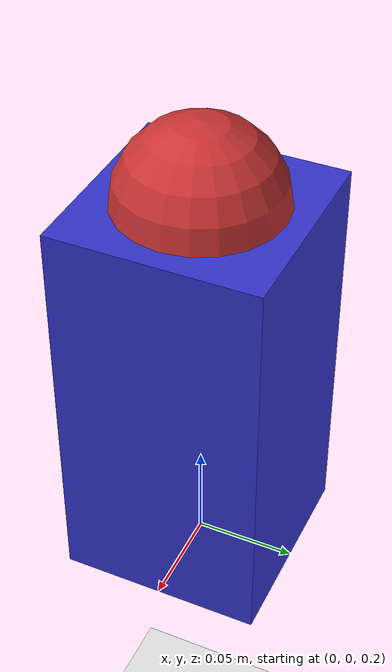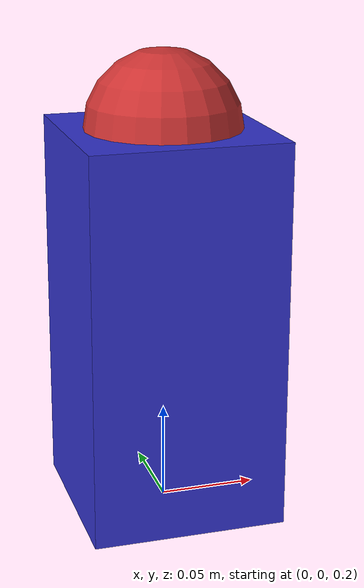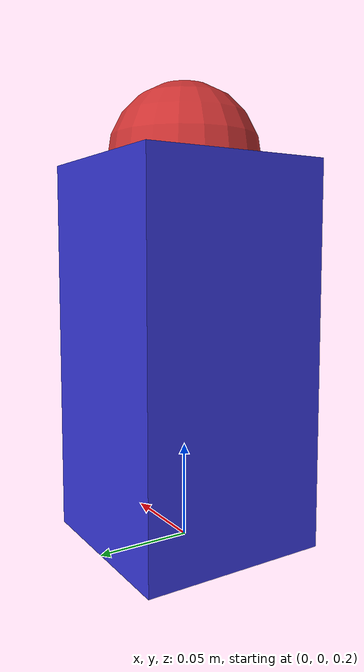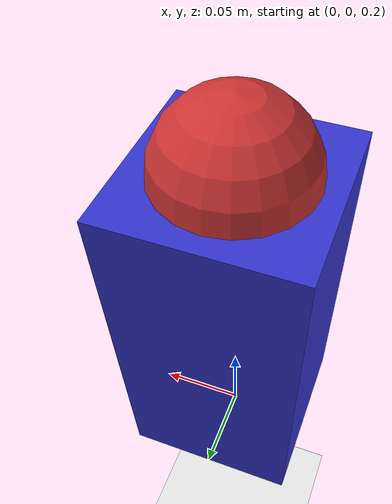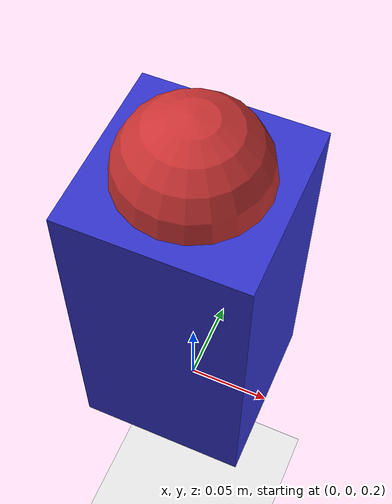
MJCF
"""
Scène minimale pour tests rapides.

Cette scène contient uniquement le robot sans environnement complexe.
"""

<mujoco model="minimal_scene">
  <compiler angle="radian" meshdir="../assets"/>

  <default>
    <joint armature="0.01" damping="1" limited="true"/>
    <geom contype="1" conaffinity="1" rgba="0.8 0.6 0.4 1"/>
  </default>

  <worldbody>
    <light pos="0 0 1" diffuse="0.5 0.5 0.5" specular="0.5 0.5 0.5"/>
    <geom name="floor" type="plane" size="0.5 0.5 0.1" rgba="0.9 0.9 0.9 1"/>

    <body name="torso" pos="0 0 0.3">
      <geom name="torso_geom" type="box" size="0.05 0.05 0.1" rgba="0.2 0.2 0.8 1"/>

      <body name="head" pos="0 0 0.1">
        <joint name="neck_yaw" type="hinge" pos="0 0 0" axis="0 0 1" range="-1.57 1.57"/>
        <geom name="head_geom" type="sphere" size="0.04" rgba="0.8 0.2 0.2 1"/>
      </body>
    </body>
  </worldbody>

  <actuator>
    <motor name="neck_yaw_motor" joint="neck_yaw" gear="100"/>
  </actuator>
</mujoco>
